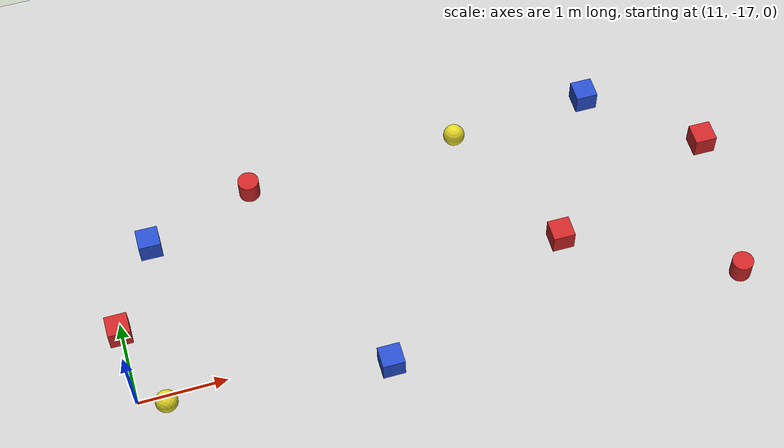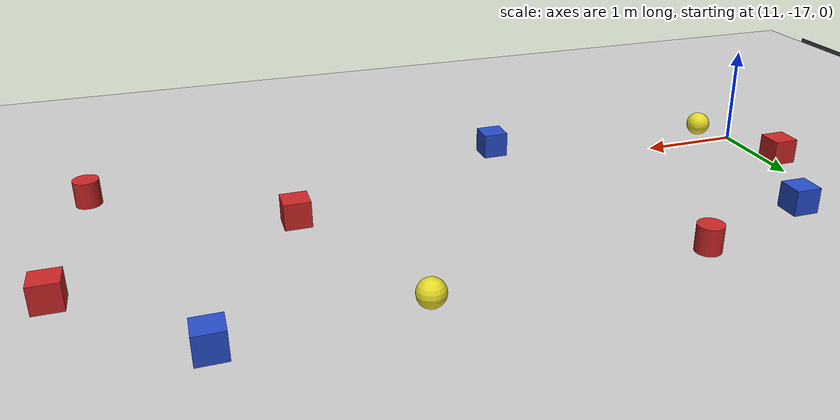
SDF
<sdf version="1.6">
 <world name="default">
  <model name="ground_plane">
   <static>1</static>
   <link name="link">
    <collision name="collision">
     <geometry><plane><normal>0 0 1</normal><size>100 100</size></plane></geometry>
     <surface><friction><ode><mu>100</mu><mu2>50</mu2></ode></friction></surface>
    </collision>
    <visual name="visual">
     <cast_shadows>0</cast_shadows>
     <geometry><plane><normal>0 0 1</normal><size>100 100</size></plane></geometry>
     <material>
      <script><uri>file://media/materials/scripts/gazebo.material</uri><name>Gazebo/Grey</name></script>
     </material>
    </visual>
    <velocity_decay><linear>0</linear><angular>0</angular></velocity_decay>
   </link>
  </model>
  <model name="asphalt_plane">
   <static>1</static>
   <link name="link">
    <collision name="collision"><geometry><box><size>20 20 0.1</size></box></geometry></collision>
    <visual name="visual">
     <cast_shadows>0</cast_shadows>
     <geometry><box><size>20 20 0.1</size></box></geometry>
     <material>
      <script>
       <uri>model://asphalt_plane/materials/scripts</uri>
       <uri>model://asphalt_plane/materials/textures</uri>
       <name>vrc/asphalt</name>
      </script>
     </material>
    </visual>
   </link>
   <pose>-9.73878 -10.1135 0 0 -0 0</pose>
  </model>
  <model name="unit_box_red_25_clone_0">
   <link name="link">
    <inertial>
     <mass>1</mass>
     <inertia>
      <ixx>0.166667</ixx>
      <ixy>0</ixy>
      <ixz>0</ixz>
      <iyy>0.166667</iyy>
      <iyz>0</iyz>
      <izz>0.166667</izz>
     </inertia>
    </inertial>
    <visual name="visual">
     <geometry><box><size>0.25 0.25 0.25</size></box></geometry>
     <material>
      <script><name>Gazebo/Red</name><uri>file://media/materials/scripts/gazebo.material</uri></script>
      <shader type="vertex"><normal_map>__default__</normal_map></shader>
      <ambient>1 0 0 1</ambient>
      <diffuse>1 0 0 1</diffuse>
      <specular>0.1 0.1 0.1 1</specular>
      <emissive>0 0 0 1</emissive>
     </material>
    </visual>
    <collision name="collision">
     <geometry><box><size>0.25 0.25 0.25</size></box></geometry>
     <surface>
      <friction>
       <ode><mu>1</mu><mu2>1</mu2><fdir1>0 0 0</fdir1><slip1>0</slip1><slip2>0</slip2></ode>
       <torsional>
        <coefficient>1</coefficient>
        <patch_radius>0</patch_radius>
        <surface_radius>0</surface_radius>
        <use_patch_radius>1</use_patch_radius>
        <ode><slip>0</slip></ode>
       </torsional>
      </friction>
      <bounce><restitution_coefficient>0</restitution_coefficient><threshold>1e+06</threshold></bounce>
      <contact>
       <collide_without_contact>0</collide_without_contact>
       <collide_without_contact_bitmask>1</collide_without_contact_bitmask>
       <collide_bitmask>1</collide_bitmask>
       <ode>
        <soft_cfm>0</soft_cfm>
        <soft_erp>0.2</soft_erp>
        <kp>1e+13</kp>
        <kd>1</kd>
        <max_vel>0.01</max_vel>
        <min_depth>0</min_depth>
       </ode>
       <bullet>
        <split_impulse>1</split_impulse>
        <split_impulse_penetration_threshold>-0.01</split_impulse_penetration_threshold>
        <soft_cfm>0</soft_cfm>
        <soft_erp>0.2</soft_erp>
        <kp>1e+13</kp>
        <kd>1</kd>
       </bullet>
      </contact>
     </surface>
    </collision>
   </link>
   <static>1</static>
   <pose>15.9986 -16.3558 0.175097 0 -0 7.4e-05</pose>
  </model>
  <model name="unit_sphere_yellow_25_clone_1">
   <link name="link">
    <inertial>
     <mass>1</mass>
     <inertia><ixx>0.1</ixx><ixy>0</ixy><ixz>0</ixz><iyy>0.1</iyy><iyz>0</iyz><izz>0.1</izz></inertia>
    </inertial>
    <pose>0 0 -0.394668 0 -0 0</pose>
    <visual name="visual">
     <geometry><sphere><radius>0.125</radius></sphere></geometry>
     <material>
      <script><name>Gazebo/Yellow</name><uri>file://media/materials/scripts/gazebo.material</uri></script>
      <shader type="vertex"><normal_map>__default__</normal_map></shader>
      <ambient>1 1 0 1</ambient>
      <diffuse>1 1 0 1</diffuse>
      <emissive>0 0 0 1</emissive>
     </material>
    </visual>
    <collision name="collision">
     <geometry><sphere><radius>0.125</radius></sphere></geometry>
     <surface>
      <friction>
       <ode><mu>1</mu><mu2>1</mu2><fdir1>0 0 0</fdir1><slip1>0</slip1><slip2>0</slip2></ode>
       <torsional>
        <coefficient>1</coefficient>
        <patch_radius>0</patch_radius>
        <surface_radius>0</surface_radius>
        <use_patch_radius>1</use_patch_radius>
        <ode><slip>0</slip></ode>
       </torsional>
      </friction>
      <bounce><restitution_coefficient>0</restitution_coefficient><threshold>1e+06</threshold></bounce>
      <contact>
       <collide_without_contact>0</collide_without_contact>
       <collide_without_contact_bitmask>1</collide_without_contact_bitmask>
       <collide_bitmask>1</collide_bitmask>
       <ode>
        <soft_cfm>0</soft_cfm>
        <soft_erp>0.2</soft_erp>
        <kp>1e+13</kp>
        <kd>1</kd>
        <max_vel>0.01</max_vel>
        <min_depth>0</min_depth>
       </ode>
       <bullet>
        <split_impulse>1</split_impulse>
        <split_impulse_penetration_threshold>-0.01</split_impulse_penetration_threshold>
        <soft_cfm>0</soft_cfm>
        <soft_erp>0.2</soft_erp>
        <kp>1e+13</kp>
        <kd>1</kd>
       </bullet>
      </contact>
     </surface>
    </collision>
   </link>
   <static>0</static>
   <pose>15.2464 -14.68 0.55 0 -0 0</pose>
  </model>
  <model name="unit_box_blue_25_clone">
   <link name="link">
    <inertial>
     <mass>1</mass>
     <inertia>
      <ixx>0.166667</ixx>
      <ixy>0</ixy>
      <ixz>0</ixz>
      <iyy>0.166667</iyy>
      <iyz>0</iyz>
      <izz>0.166667</izz>
     </inertia>
    </inertial>
    <pose>-0 -0 -0.381153 0 -0 0</pose>
    <visual name="visual">
     <geometry><box><size>0.25 0.25 0.25</size></box></geometry>
     <material>
      <script><name>Gazebo/Blue</name><uri>file://media/materials/scripts/gazebo.material</uri></script>
      <shader type="vertex"><normal_map>__default__</normal_map></shader>
      <ambient>0 0 1 1</ambient>
      <diffuse>0 0 1 1</diffuse>
      <specular>0.1 0.1 0.1 1</specular>
      <emissive>0 0 0 1</emissive>
     </material>
    </visual>
    <collision name="collision">
     <geometry><box><size>0.25 0.25 0.25</size></box></geometry>
     <surface>
      <friction>
       <ode><mu>1</mu><mu2>1</mu2><fdir1>0 0 0</fdir1><slip1>0</slip1><slip2>0</slip2></ode>
       <torsional>
        <coefficient>1</coefficient>
        <patch_radius>0</patch_radius>
        <surface_radius>0</surface_radius>
        <use_patch_radius>1</use_patch_radius>
        <ode><slip>0</slip></ode>
       </torsional>
      </friction>
      <bounce><restitution_coefficient>0</restitution_coefficient><threshold>1e+06</threshold></bounce>
      <contact>
       <collide_without_contact>0</collide_without_contact>
       <collide_without_contact_bitmask>1</collide_without_contact_bitmask>
       <collide_bitmask>1</collide_bitmask>
       <ode>
        <soft_cfm>0</soft_cfm>
        <soft_erp>0.2</soft_erp>
        <kp>1e+13</kp>
        <kd>1</kd>
        <max_vel>0.01</max_vel>
        <min_depth>0</min_depth>
       </ode>
       <bullet>
        <split_impulse>1</split_impulse>
        <split_impulse_penetration_threshold>-0.01</split_impulse_penetration_threshold>
        <soft_cfm>0</soft_cfm>
        <soft_erp>0.2</soft_erp>
        <kp>1e+13</kp>
        <kd>1</kd>
       </bullet>
      </contact>
     </surface>
    </collision>
   </link>
   <static>0</static>
   <pose>16.8891 -14.5699 0.549999 -2e-06 0 1.9e-05</pose>
  </model>
  <model name="unit_box_red_25_clone_2">
   <link name="link">
    <inertial>
     <mass>1</mass>
     <inertia>
      <ixx>0.166667</ixx>
      <ixy>0</ixy>
      <ixz>0</ixz>
      <iyy>0.166667</iyy>
      <iyz>0</iyz>
      <izz>0.166667</izz>
     </inertia>
    </inertial>
    <pose>-0 -0 -0.362559 0 -0 0</pose>
    <visual name="visual">
     <geometry><box><size>0.25 0.25 0.25</size></box></geometry>
     <material>
      <script><name>Gazebo/Red</name><uri>file://media/materials/scripts/gazebo.material</uri></script>
      <shader type="vertex"><normal_map>__default__</normal_map></shader>
      <ambient>1 0 0 1</ambient>
      <diffuse>1 0 0 1</diffuse>
      <specular>0.1 0.1 0.1 1</specular>
      <emissive>0 0 0 1</emissive>
     </material>
    </visual>
    <collision name="collision">
     <geometry><box><size>0.25 0.25 0.25</size></box></geometry>
     <surface>
      <friction>
       <ode><mu>1</mu><mu2>1</mu2><fdir1>0 0 0</fdir1><slip1>0</slip1><slip2>0</slip2></ode>
       <torsional>
        <coefficient>1</coefficient>
        <patch_radius>0</patch_radius>
        <surface_radius>0</surface_radius>
        <use_patch_radius>1</use_patch_radius>
        <ode><slip>0</slip></ode>
       </torsional>
      </friction>
      <bounce><restitution_coefficient>0</restitution_coefficient><threshold>1e+06</threshold></bounce>
      <contact>
       <collide_without_contact>0</collide_without_contact>
       <collide_without_contact_bitmask>1</collide_without_contact_bitmask>
       <collide_bitmask>1</collide_bitmask>
       <ode>
        <soft_cfm>0</soft_cfm>
        <soft_erp>0.2</soft_erp>
        <kp>1e+13</kp>
        <kd>1</kd>
        <max_vel>0.01</max_vel>
        <min_depth>0</min_depth>
       </ode>
       <bullet>
        <split_impulse>1</split_impulse>
        <split_impulse_penetration_threshold>-0.01</split_impulse_penetration_threshold>
        <soft_cfm>0</soft_cfm>
        <soft_erp>0.2</soft_erp>
        <kp>1e+13</kp>
        <kd>1</kd>
       </bullet>
      </contact>
     </surface>
    </collision>
   </link>
   <static>0</static>
   <pose>18.0023 -15.5728 0.549999 -2e-06 0 7.7e-05</pose>
  </model>
  <model name="unit_box_red_256">
   <link name="link">
    <inertial>
     <mass>1</mass>
     <inertia>
      <ixx>0.166667</ixx>
      <ixy>0</ixy>
      <ixz>0</ixz>
      <iyy>0.166667</iyy>
      <iyz>0</iyz>
      <izz>0.166667</izz>
     </inertia>
    </inertial>
    <pose>-0 1e-06 -0.357363 0 -0 0</pose>
    <visual name="visual">
     <geometry><box><size>0.25 0.25 0.25</size></box></geometry>
     <material>
      <script><name>Gazebo/Red</name><uri>file://media/materials/scripts/gazebo.material</uri></script>
      <shader type="vertex"><normal_map>__default__</normal_map></shader>
      <ambient>1 0 0 1</ambient>
      <diffuse>1 0 0 1</diffuse>
      <specular>0.1 0.1 0.1 1</specular>
      <emissive>0 0 0 1</emissive>
     </material>
    </visual>
    <collision name="collision">
     <geometry><box><size>0.25 0.25 0.25</size></box></geometry>
     <surface>
      <friction>
       <ode><mu>1</mu><mu2>1</mu2><fdir1>0 0 0</fdir1><slip1>0</slip1><slip2>0</slip2></ode>
       <torsional>
        <coefficient>1</coefficient>
        <patch_radius>0</patch_radius>
        <surface_radius>0</surface_radius>
        <use_patch_radius>1</use_patch_radius>
        <ode><slip>0</slip></ode>
       </torsional>
      </friction>
      <bounce><restitution_coefficient>0</restitution_coefficient><threshold>1e+06</threshold></bounce>
      <contact>
       <collide_without_contact>0</collide_without_contact>
       <collide_without_contact_bitmask>1</collide_without_contact_bitmask>
       <collide_bitmask>1</collide_bitmask>
       <ode>
        <soft_cfm>0</soft_cfm>
        <soft_erp>0.2</soft_erp>
        <kp>1e+13</kp>
        <kd>1</kd>
        <max_vel>0.01</max_vel>
        <min_depth>0</min_depth>
       </ode>
       <bullet>
        <split_impulse>1</split_impulse>
        <split_impulse_penetration_threshold>-0.01</split_impulse_penetration_threshold>
        <soft_cfm>0</soft_cfm>
        <soft_erp>0.2</soft_erp>
        <kp>1e+13</kp>
        <kd>1</kd>
       </bullet>
      </contact>
     </surface>
    </collision>
   </link>
   <static>0</static>
   <pose>10.9847 -16.175 0.549999 -2e-06 -0 7.4e-05</pose>
  </model>
  <model name="unit_box_blue_256">
   <link name="link">
    <inertial>
     <mass>1</mass>
     <inertia>
      <ixx>0.166667</ixx>
      <ixy>0</ixy>
      <ixz>0</ixz>
      <iyy>0.166667</iyy>
      <iyz>0</iyz>
      <izz>0.166667</izz>
     </inertia>
    </inertial>
    <pose>0 0 -0.379003 0 -0 0</pose>
    <visual name="visual">
     <geometry><box><size>0.25 0.25 0.25</size></box></geometry>
     <material>
      <script><name>Gazebo/Blue</name><uri>file://media/materials/scripts/gazebo.material</uri></script>
      <shader type="vertex"><normal_map>__default__</normal_map></shader>
      <ambient>0 0 1 1</ambient>
      <diffuse>0 0 1 1</diffuse>
      <specular>0.1 0.1 0.1 1</specular>
      <emissive>0 0 0 1</emissive>
     </material>
    </visual>
    <collision name="collision">
     <geometry><box><size>0.25 0.25 0.25</size></box></geometry>
     <surface>
      <friction>
       <ode><mu>1</mu><mu2>1</mu2><fdir1>0 0 0</fdir1><slip1>0</slip1><slip2>0</slip2></ode>
       <torsional>
        <coefficient>1</coefficient>
        <patch_radius>0</patch_radius>
        <surface_radius>0</surface_radius>
        <use_patch_radius>1</use_patch_radius>
        <ode><slip>0</slip></ode>
       </torsional>
      </friction>
      <bounce><restitution_coefficient>0</restitution_coefficient><threshold>1e+06</threshold></bounce>
      <contact>
       <collide_without_contact>0</collide_without_contact>
       <collide_without_contact_bitmask>1</collide_without_contact_bitmask>
       <collide_bitmask>1</collide_bitmask>
       <ode>
        <soft_cfm>0</soft_cfm>
        <soft_erp>0.2</soft_erp>
        <kp>1e+13</kp>
        <kd>1</kd>
        <max_vel>0.01</max_vel>
        <min_depth>0</min_depth>
       </ode>
       <bullet>
        <split_impulse>1</split_impulse>
        <split_impulse_penetration_threshold>-0.01</split_impulse_penetration_threshold>
        <soft_cfm>0</soft_cfm>
        <soft_erp>0.2</soft_erp>
        <kp>1e+13</kp>
        <kd>1</kd>
       </bullet>
      </contact>
     </surface>
    </collision>
   </link>
   <static>0</static>
   <pose>11.5198 -15.1593 0.550002 -4e-06 -0 -0.012202</pose>
  </model>
  <model name="unit_box_blue_25_clone_0">
   <link name="link">
    <inertial>
     <mass>1</mass>
     <inertia>
      <ixx>0.166667</ixx>
      <ixy>0</ixy>
      <ixz>0</ixz>
      <iyy>0.166667</iyy>
      <iyz>0</iyz>
      <izz>0.166667</izz>
     </inertia>
    </inertial>
    <pose>-0 1e-06 -0.383769 0 -0 0</pose>
    <visual name="visual">
     <geometry><box><size>0.25 0.25 0.25</size></box></geometry>
     <material>
      <script><name>Gazebo/Blue</name><uri>file://media/materials/scripts/gazebo.material</uri></script>
      <shader type="vertex"><normal_map>__default__</normal_map></shader>
      <ambient>0 0 1 1</ambient>
      <diffuse>0 0 1 1</diffuse>
      <specular>0.1 0.1 0.1 1</specular>
      <emissive>0 0 0 1</emissive>
     </material>
    </visual>
    <collision name="collision">
     <geometry><box><size>0.25 0.25 0.25</size></box></geometry>
     <surface>
      <friction>
       <ode><mu>1</mu><mu2>1</mu2><fdir1>0 0 0</fdir1><slip1>0</slip1><slip2>0</slip2></ode>
       <torsional>
        <coefficient>1</coefficient>
        <patch_radius>0</patch_radius>
        <surface_radius>0</surface_radius>
        <use_patch_radius>1</use_patch_radius>
        <ode><slip>0</slip></ode>
       </torsional>
      </friction>
      <bounce><restitution_coefficient>0</restitution_coefficient><threshold>1e+06</threshold></bounce>
      <contact>
       <collide_without_contact>0</collide_without_contact>
       <collide_without_contact_bitmask>1</collide_without_contact_bitmask>
       <collide_bitmask>1</collide_bitmask>
       <ode>
        <soft_cfm>0</soft_cfm>
        <soft_erp>0.2</soft_erp>
        <kp>1e+13</kp>
        <kd>1</kd>
        <max_vel>0.01</max_vel>
        <min_depth>0</min_depth>
       </ode>
       <bullet>
        <split_impulse>1</split_impulse>
        <split_impulse_penetration_threshold>-0.01</split_impulse_penetration_threshold>
        <soft_cfm>0</soft_cfm>
        <soft_erp>0.2</soft_erp>
        <kp>1e+13</kp>
        <kd>1</kd>
       </bullet>
      </contact>
     </surface>
    </collision>
   </link>
   <static>0</static>
   <pose>13.7325 -17.3597 0.549999 -2e-06 0 1.9e-05</pose>
  </model>
  <model name="unit_sphere_yellow_251">
   <link name="link">
    <inertial>
     <mass>1</mass>
     <inertia><ixx>0.1</ixx><ixy>0</ixy><ixz>0</ixz><iyy>0.1</iyy><iyz>0</iyz><izz>0.1</izz></inertia>
    </inertial>
    <pose>0.260932 0.224906 -0.199146 0.726792 0.52416 0.71138</pose>
    <visual name="visual">
     <geometry><sphere><radius>0.125</radius></sphere></geometry>
     <material>
      <script><name>Gazebo/Yellow</name><uri>file://media/materials/scripts/gazebo.material</uri></script>
      <shader type="vertex"><normal_map>__default__</normal_map></shader>
      <ambient>1 1 0 1</ambient>
      <diffuse>1 1 0 1</diffuse>
      <emissive>0 0 0 1</emissive>
     </material>
    </visual>
    <collision name="collision">
     <geometry><sphere><radius>0.125</radius></sphere></geometry>
     <surface>
      <friction>
       <ode><mu>1</mu><mu2>1</mu2><fdir1>0 0 0</fdir1><slip1>0</slip1><slip2>0</slip2></ode>
       <torsional>
        <coefficient>1</coefficient>
        <patch_radius>0</patch_radius>
        <surface_radius>0</surface_radius>
        <use_patch_radius>1</use_patch_radius>
        <ode><slip>0</slip></ode>
       </torsional>
      </friction>
      <bounce><restitution_coefficient>0</restitution_coefficient><threshold>1e+06</threshold></bounce>
      <contact>
       <collide_without_contact>0</collide_without_contact>
       <collide_without_contact_bitmask>1</collide_without_contact_bitmask>
       <collide_bitmask>1</collide_bitmask>
       <ode>
        <soft_cfm>0</soft_cfm>
        <soft_erp>0.2</soft_erp>
        <kp>1e+13</kp>
        <kd>1</kd>
        <max_vel>0.01</max_vel>
        <min_depth>0</min_depth>
       </ode>
       <bullet>
        <split_impulse>1</split_impulse>
        <split_impulse_penetration_threshold>-0.01</split_impulse_penetration_threshold>
        <soft_cfm>0</soft_cfm>
        <soft_erp>0.2</soft_erp>
        <kp>1e+13</kp>
        <kd>1</kd>
       </bullet>
      </contact>
     </surface>
    </collision>
   </link>
   <static>0</static>
   <pose>11.2592 -17.2031 0.55 -0.908158 0.903572 -2.60135</pose>
  </model>
  <model name="unit_cylinder_red_25_clone">
   <link name="link">
    <inertial>
     <mass>1</mass>
     <inertia><ixx>0.145833</ixx><ixy>0</ixy><ixz>0</ixz><iyy>0.145833</iyy><iyz>0</iyz><izz>0.125</izz></inertia>
    </inertial>
    <pose>-0 -0 -0.358873 0 -0 0</pose>
    <visual name="visual">
     <geometry><cylinder><radius>0.12</radius><length>0.25</length></cylinder></geometry>
     <material>
      <script><name>Gazebo/Red</name><uri>file://media/materials/scripts/gazebo.material</uri></script>
      <shader type="vertex"><normal_map>__default__</normal_map></shader>
      <ambient>1 0 0 1</ambient>
      <diffuse>1 0 0 1</diffuse>
      <specular>0.1 0.1 0.1 1</specular>
      <emissive>0 0 0 1</emissive>
     </material>
    </visual>
    <collision name="collision">
     <geometry><cylinder><radius>0.12</radius><length>0.25</length></cylinder></geometry>
     <surface>
      <friction>
       <ode><mu>1</mu><mu2>1</mu2><fdir1>0 0 0</fdir1><slip1>0</slip1><slip2>0</slip2></ode>
       <torsional>
        <coefficient>1</coefficient>
        <patch_radius>0</patch_radius>
        <surface_radius>0</surface_radius>
        <use_patch_radius>1</use_patch_radius>
        <ode><slip>0</slip></ode>
       </torsional>
      </friction>
      <bounce><restitution_coefficient>0</restitution_coefficient><threshold>1e+06</threshold></bounce>
      <contact>
       <collide_without_contact>0</collide_without_contact>
       <collide_without_contact_bitmask>1</collide_without_contact_bitmask>
       <collide_bitmask>1</collide_bitmask>
       <ode>
        <soft_cfm>0</soft_cfm>
        <soft_erp>0.2</soft_erp>
        <kp>1e+13</kp>
        <kd>1</kd>
        <max_vel>0.01</max_vel>
        <min_depth>0</min_depth>
       </ode>
       <bullet>
        <split_impulse>1</split_impulse>
        <split_impulse_penetration_threshold>-0.01</split_impulse_penetration_threshold>
        <soft_cfm>0</soft_cfm>
        <soft_erp>0.2</soft_erp>
        <kp>1e+13</kp>
        <kd>1</kd>
       </bullet>
      </contact>
     </surface>
    </collision>
   </link>
   <static>0</static>
   <pose>17.7864 -17.3401 0.55 0 0 -0.000428</pose>
  </model>
  <model name="unit_cylinder_red_251">
   <link name="link">
    <inertial>
     <mass>1</mass>
     <inertia><ixx>0.145833</ixx><ixy>0</ixy><ixz>0</ixz><iyy>0.145833</iyy><iyz>0</iyz><izz>0.125</izz></inertia>
    </inertial>
    <pose>-0 -0 -0.372249 0 -0 0</pose>
    <visual name="visual">
     <geometry><cylinder><radius>0.12</radius><length>0.25</length></cylinder></geometry>
     <material>
      <script><name>Gazebo/Red</name><uri>file://media/materials/scripts/gazebo.material</uri></script>
      <shader type="vertex"><normal_map>__default__</normal_map></shader>
      <ambient>1 0 0 1</ambient>
      <diffuse>1 0 0 1</diffuse>
      <specular>0.1 0.1 0.1 1</specular>
      <emissive>0 0 0 1</emissive>
     </material>
    </visual>
    <collision name="collision">
     <geometry><cylinder><radius>0.12</radius><length>0.25</length></cylinder></geometry>
     <surface>
      <friction>
       <ode><mu>1</mu><mu2>1</mu2><fdir1>0 0 0</fdir1><slip1>0</slip1><slip2>0</slip2></ode>
       <torsional>
        <coefficient>1</coefficient>
        <patch_radius>0</patch_radius>
        <surface_radius>0</surface_radius>
        <use_patch_radius>1</use_patch_radius>
        <ode><slip>0</slip></ode>
       </torsional>
      </friction>
      <bounce><restitution_coefficient>0</restitution_coefficient><threshold>1e+06</threshold></bounce>
      <contact>
       <collide_without_contact>0</collide_without_contact>
       <collide_without_contact_bitmask>1</collide_without_contact_bitmask>
       <collide_bitmask>1</collide_bitmask>
       <ode>
        <soft_cfm>0</soft_cfm>
        <soft_erp>0.2</soft_erp>
        <kp>1e+13</kp>
        <kd>1</kd>
        <max_vel>0.01</max_vel>
        <min_depth>0</min_depth>
       </ode>
       <bullet>
        <split_impulse>1</split_impulse>
        <split_impulse_penetration_threshold>-0.01</split_impulse_penetration_threshold>
        <soft_cfm>0</soft_cfm>
        <soft_erp>0.2</soft_erp>
        <kp>1e+13</kp>
        <kd>1</kd>
       </bullet>
      </contact>
     </surface>
    </collision>
   </link>
   <static>0</static>
   <pose>12.77 -14.7358 0.550001 1e-06 2e-06 -5.4e-05</pose>
  </model>
 </world>
</sdf>
